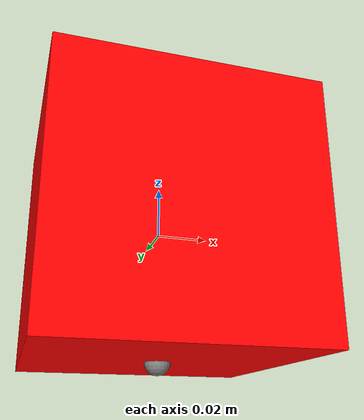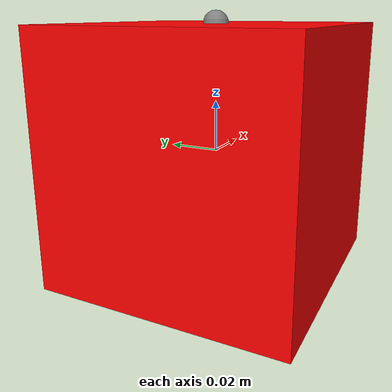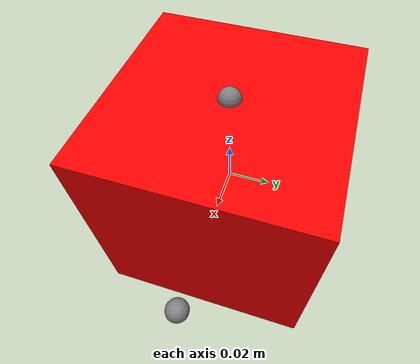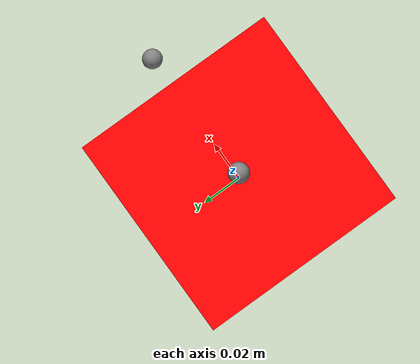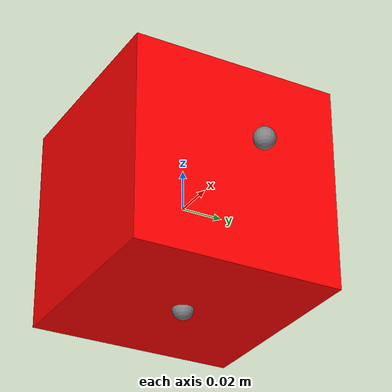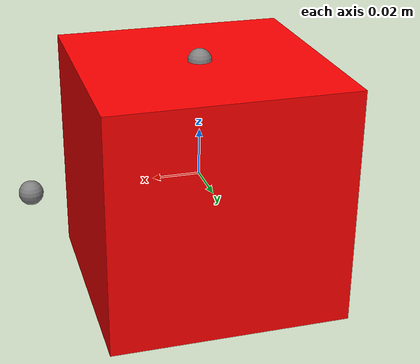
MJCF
<!-- sample of a general object defined in mujoco -->
<mujoco model="box">
  <worldbody>
    <body name="collision">
      <geom pos="0 0 0" size="0.05 0.05 0.05" type="box" rgba="1 0 0 1"/>
    </body>
    <body name="visual">
      <geom pos="0 0 0" size="0.05 0.05 0.05" type="box" rgba="1 0 0 1"  conaffinity="0" contype="0" mass="0.0001" group="1"/>
      <geom pos="0 0 0" size="0.05 0.05 0.05" type="box" rgba="1 0 0 1"  conaffinity="0" contype="0" mass="0.0001" group="0"/>
    </body>
    <site pos="0 0 -0.05" name="bottom_site"/>
    <site pos="0 0 0.05" name="top_site"/>
    <site pos="0.071 0 0" name="horizontal_radius_site"/>
  </worldbody>
</mujoco>
